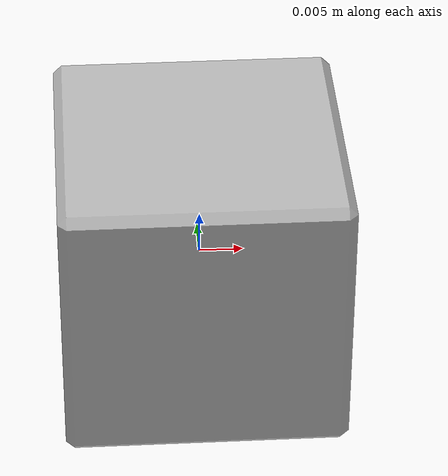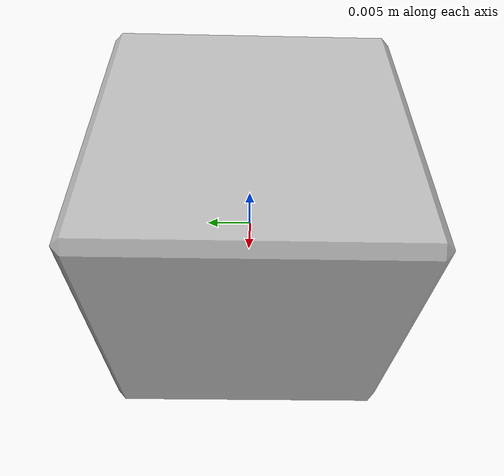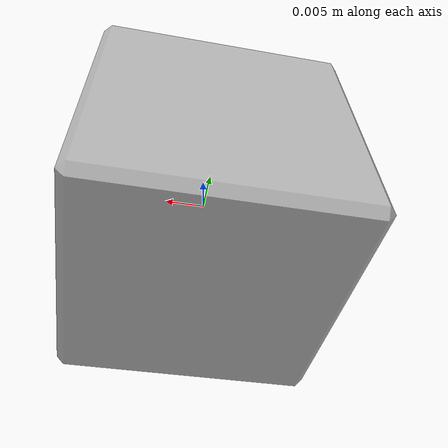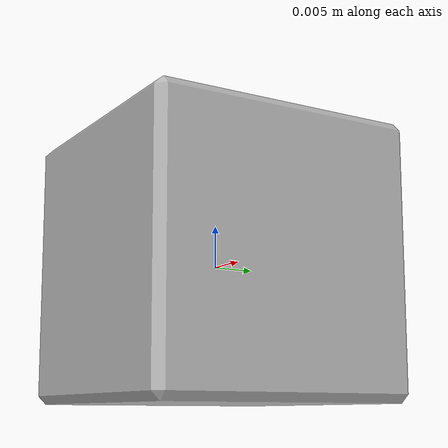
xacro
<?xml version="1.0" ?>
<robot name="cube" xmlns:xacro="http://www.ros.org/wiki/xacro">

<xacro:include filename="$(find cube_description)/urdf/materials.xacro" />
<xacro:include filename="$(find cube_description)/urdf/cube.trans" />
<xacro:include filename="$(find cube_description)/urdf/cube.gazebo" />
<link name="base_link">
  <inertial>
    <origin rpy="0 0 0" xyz="2.1808276797351245e-18 2.1808276797351245e-18 0.0"/>
    <mass value="0.03329812266666667"/>
    <inertia ixx="6e-06" ixy="0.0" ixz="0.0" iyy="6e-06" iyz="0.0" izz="6e-06"/>
  </inertial>
  <visual>
    <origin rpy="0 0 0" xyz="0 0 0"/>
    <geometry>
      <mesh filename="package://cube_description/meshes/base_link.stl" scale="0.001 0.001 0.001"/>
    </geometry>
    <material name="silver"/>
  </visual>
  <collision>
    <origin rpy="0 0 0" xyz="0 0 0"/>
    <geometry>
      <mesh filename="package://cube_description/meshes/base_link.stl" scale="0.001 0.001 0.001"/>
    </geometry>
  </collision>
</link>

</robot>

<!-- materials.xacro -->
<robot name="cube" xmlns:xacro="http://www.ros.org/wiki/xacro" >

<material name="silver">
  <color rgba="0.700 0.700 0.700 1.000"/>
</material>

</robot>

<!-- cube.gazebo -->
<robot name="cube" xmlns:xacro="http://www.ros.org/wiki/xacro" >

<xacro:property name="body_color" value="Gazebo/Silver" />

<gazebo>
  <plugin filename="libgazebo_ros_control.so" name="control"/>
</gazebo>
<gazebo reference="base_link">
  <material>${body_color}</material>
  <mu1>0.2</mu1>
  <mu2>0.2</mu2>
  <selfCollide>true</selfCollide>
  <gravity>true</gravity>
</gazebo>

</robot>
